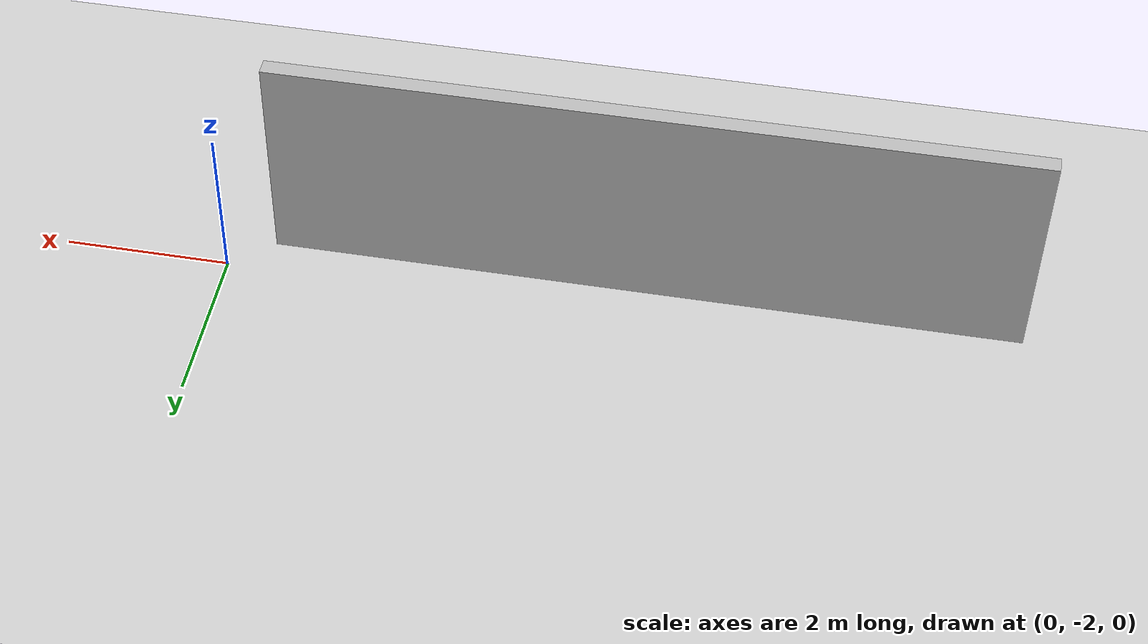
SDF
<sdf version='1.4'>
  <world name='default'>
    <light name='sun' type='directional'>
      <cast_shadows>1</cast_shadows>
      <pose>0 0 10 0 -0 -1.5708</pose>
      <diffuse>0.8 0.8 0.8 1</diffuse>
      <specular>0.2 0.2 0.2 1</specular>
      <attenuation>
        <range>1000</range>
        <constant>0.9</constant>
        <linear>0.01</linear>
        <quadratic>0.001</quadratic>
      </attenuation>
      <direction>-0.5 0.1 -0.9</direction>
    </light>
    <light name='user_point_light_0' type='point'>
      <cast_shadows>0</cast_shadows>
      <pose>-8 -9 1 0 -0 -1.5708</pose>
      <diffuse>0.5 0.5 0.5 1</diffuse>
      <specular>0.1 0.1 0.1 1</specular>
      <attenuation>
        <range>20</range>
        <constant>0.5</constant>
        <linear>0.01</linear>
        <quadratic>0</quadratic>
      </attenuation>
      <direction>0 0 -1</direction>
    </light>
    <light name='user_point_light_1' type='point'>
      <cast_shadows>0</cast_shadows>
      <pose>9 6 1 0 -0 -1.5708</pose>
      <diffuse>0.5 0.5 0.5 1</diffuse>
      <specular>0.1 0.1 0.1 1</specular>
      <attenuation>
        <range>20</range>
        <constant>0.5</constant>
        <linear>0.01</linear>
        <quadratic>0</quadratic>
      </attenuation>
      <direction>0 0 -1</direction>
    </light>
    <model name='ground_plane'>
      <static>1</static>
      <link name='link'>
        <collision name='collision'>
          <geometry>
            <plane>
              <normal>0 0 1</normal>
              <size>100 100</size>
            </plane>
          </geometry>
          <surface>
            <friction>
              <ode>
                <mu>100</mu>
                <mu2>50</mu2>
              </ode>
            </friction>
            <bounce/>
            <contact>
              <ode/>
            </contact>
          </surface>
          <max_contacts>10</max_contacts>
        </collision>
        <visual name='visual'>
          <cast_shadows>0</cast_shadows>
          <geometry>
            <plane>
              <normal>0 0 1</normal>
              <size>100 100</size>
            </plane>
          </geometry>
          <material>
            <script>
              <uri>file://media/materials/scripts/gazebo.material</uri>
              <name>Gazebo/Grey</name>
            </script>
          </material>
        </visual>
        <velocity_decay>
          <linear>0</linear>
          <angular>0</angular>
        </velocity_decay>
        <self_collide>0</self_collide>
        <kinematic>0</kinematic>
        <gravity>1</gravity>
      </link>
    </model>
    <physics type='ode'>
      <max_step_size>0.001</max_step_size>
      <real_time_factor>1</real_time_factor>
      <real_time_update_rate>1000</real_time_update_rate>
      <gravity>0 0 -9.8</gravity>
    </physics>
    <scene>
      <ambient>0.4 0.4 0.4 1</ambient>
      <background>0.7 0.7 0.7 1</background>
      <shadows>1</shadows>
    </scene>
    <spherical_coordinates>
      <surface_model>EARTH_WGS84</surface_model>
      <latitude_deg>0</latitude_deg>
      <longitude_deg>0</longitude_deg>
      <elevation>0</elevation>
      <heading_deg>0</heading_deg>
    </spherical_coordinates>
    <model name='kitchen_dining'>
      <static>1</static>
      <link name='link'>
        <pose>0 0 1.4 0 -0 -1.5708</pose>
        <collision name='collision'>
          <geometry>
            <box>
              <size>9 0.2 2.8</size>
            </box>
          </geometry>
          <max_contacts>10</max_contacts>
          <surface>
            <bounce/>
            <friction>
              <ode/>
            </friction>
            <contact>
              <ode/>
            </contact>
          </surface>
        </collision>
        <visual name='visual'>
          <cast_shadows>0</cast_shadows>
          <geometry>
            <box>
              <size>9 0.2 2.8</size>
            </box>
          </geometry>
          <material>
            <script>
              <uri>model://kitchen_dining/materials/scripts</uri>
              <uri>model://kitchen_dining/materials/textures</uri>
              <name>vrc/kitchen_dining</name>
            </script>
          </material>
        </visual>
        <velocity_decay>
          <linear>0</linear>
          <angular>0</angular>
        </velocity_decay>
        <self_collide>0</self_collide>
        <kinematic>0</kinematic>
        <gravity>1</gravity>
      </link>
      <pose>-5 -2.53262 0 0 -0 -1.5708</pose>
    </model>

    <gui fullscreen='0'>
      <camera name='user_camera'>
        <pose>0.59881 -4.06701 27.182 -2.2526e-16 1.3218 2.2322</pose>
        <view_controller>orbit</view_controller>
      </camera>
    </gui>
  </world>
</sdf>
